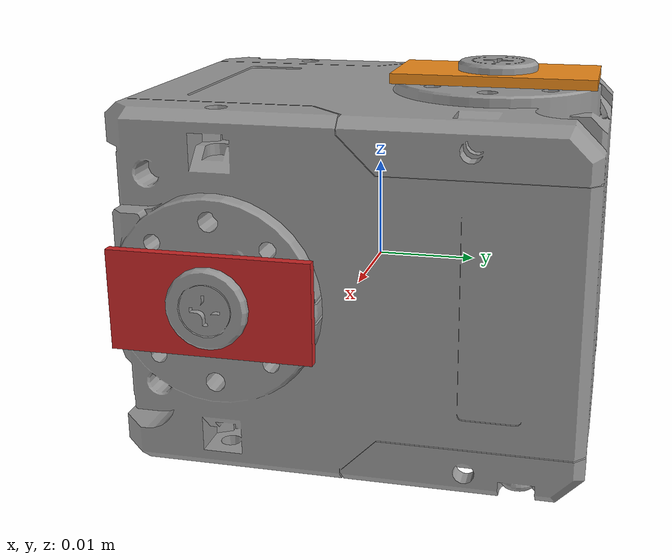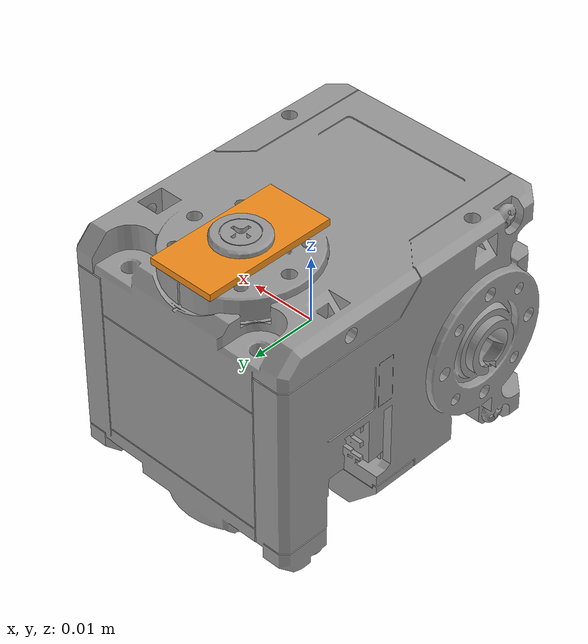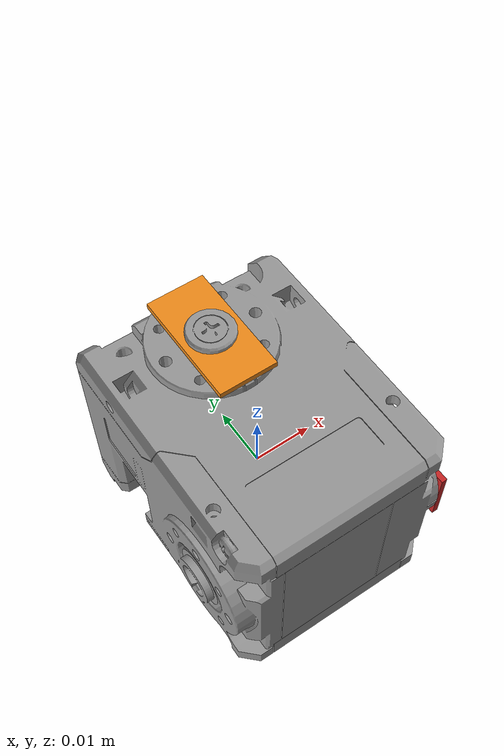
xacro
<?xml version="1.0"?>
<robot name="my_robo" xmlns:xacro="http://ros.org/wiki/xacro">\
	<xacro:include filename="$(find turtlebot3_description)/urdf/common_properties.xacro"/>

	<link name="base"/>

	<joint name="dynamixel_fix" type="fixed">
		<parent link="base"/>
		<child link="dynx_2XL430"/>
		<origin xyz="0 0 0" rpy="0 0 0"/>
	</joint>

	<link name="dynx_2XL430">
			<inertial>
				<origin xyz="0 0 0" rpy="0 0 0"/>
				<mass value="${98.2/1000}"/>
				<inertia ixx="0.1"  ixy="0"  ixz="0" iyy="0.1" iyz="0" izz="0.1" /> <!-- not correct todo-->
			</inertial>
			<visual>
				<origin xyz="0 0 0" rpy="0 0 0" />
				<geometry>
					<mesh filename="package://turtlebot3_description/meshes/dynamixel/2XL430-W250-T.stl" />
				</geometry>
			</visual>
			<collision>
				<origin xyz="0 0 0" rpy="0 0 0"/>
				<geometry>
					<mesh filename="package://turtlebot3_description/meshes/dynamixel/2XL430-W250-T.stl"/>
				</geometry>
			</collision>
	</link>
	<gazebo reference="dynx_2XL430">
		<material>Gazebo/Grey</material>
	</gazebo>

	<joint name="2XL430_yaw_joint" type="fixed">
		<parent link="dynx_2XL430"/>
		<child link="hone1"/>
		<origin xyz="${0/1000} ${12/1000} ${19/1000}" rpy="0 0 0"/>
		<!--6.3879[rad/sec]=61[rev/min], 1.5[Nm]-->
	</joint>
	<link name="hone1">
		<visual>
			<origin xyz="0 0 0.0005" rpy="0 0 0"/>
			<geometry>
				<box size="0.01 0.02 0.001"/>
			</geometry>
			<material name="orange"/>
		</visual>
	</link>
	<gazebo reference="hone1">
		<material>Gazebo/Orange</material>
	</gazebo>

	<joint name="2XL430_pitch_joint" type="fixed">
		<parent link="dynx_2XL430"/>
		<child link="hone2"/>
		<origin xyz="${19/1000} ${-12/1000} ${0/1000}" rpy="0 0 0"/>
		<!--6.3879[rad/sec]=61[rev/min], 1.5[Nm]-->
	</joint>
	<link name="hone2">
		<visual>
			<origin xyz="0.0005 0 0" rpy="0 0 0"/>
			<geometry>
				<box size="0.001 0.02 0.01"/>
			</geometry>
			<material name="red"/>
		</visual>
	</link>
	<gazebo reference="hone2">
		<material>Gazebo/Red</material>
	</gazebo>

</robot>
